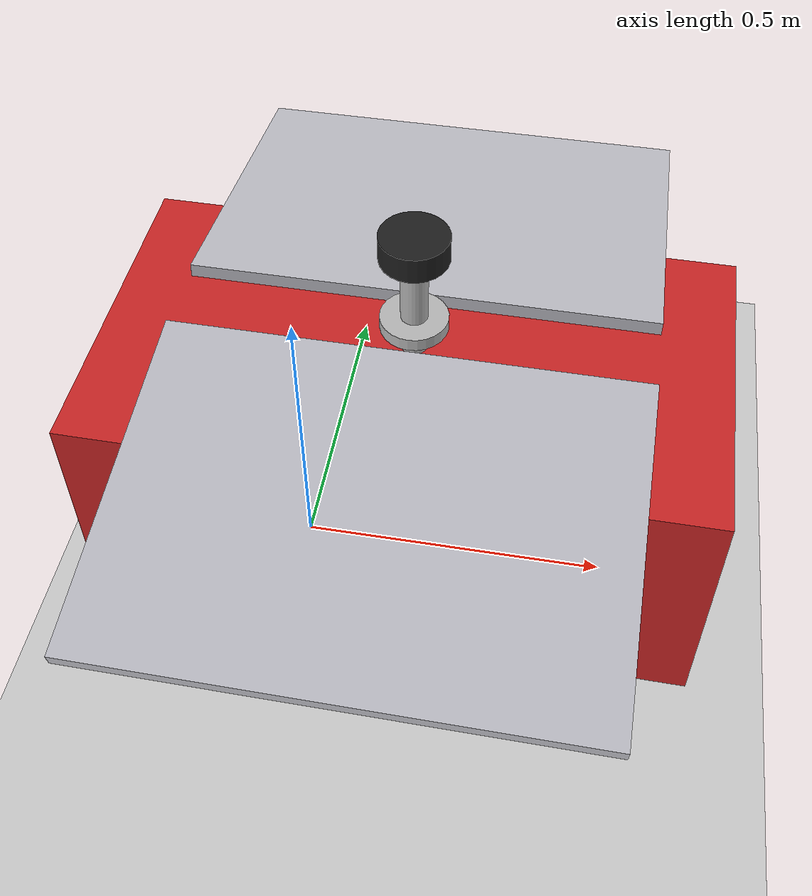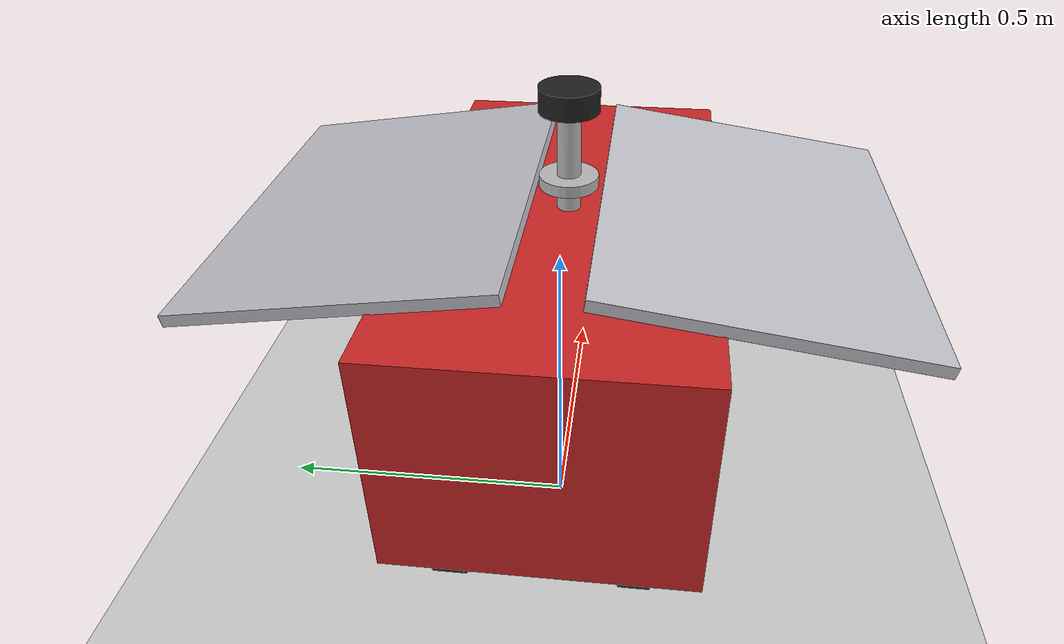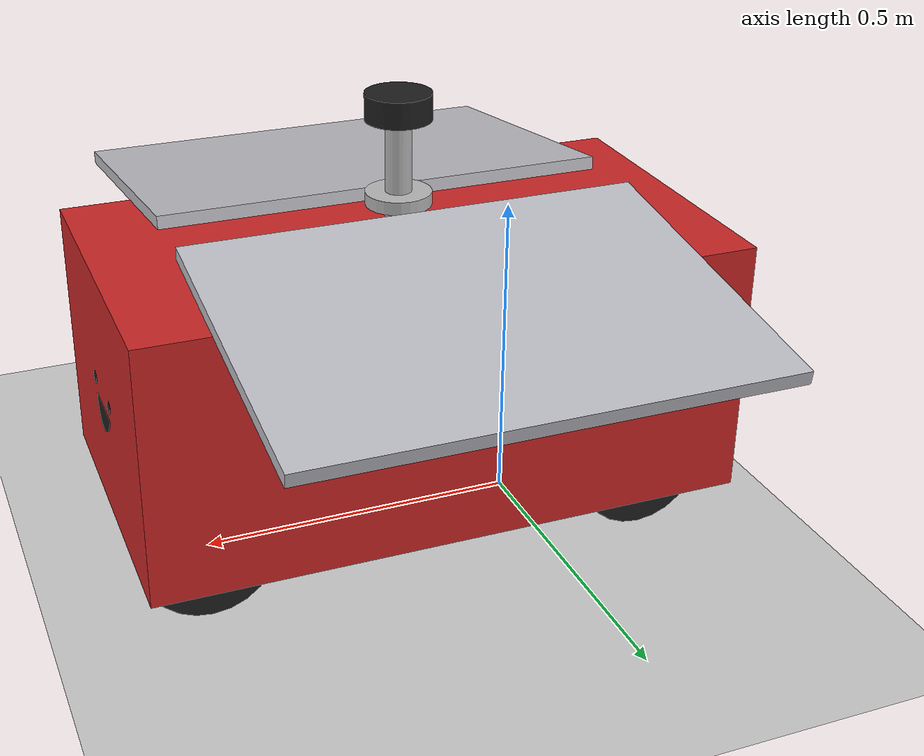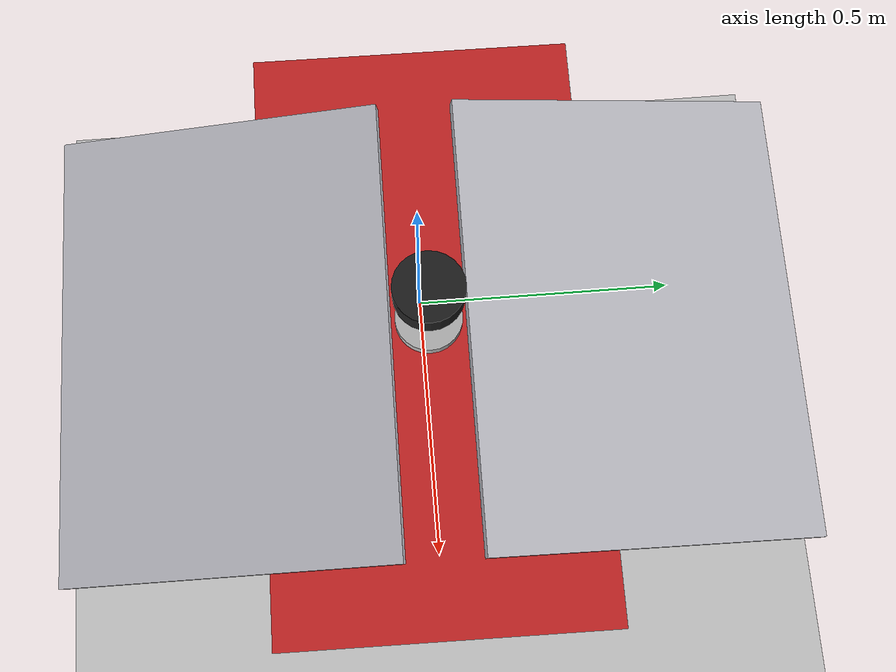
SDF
<sdf version="1.7">
 <world name="default">
  <light name="sun" type="directional">
   <pose>0 0 10 0 -0 0</pose>
   <diffuse>0.8 0.8 0.8 1</diffuse>
   <specular>0.2 0.2 0.2 1</specular>
   <attenuation>
    <range>1000</range>
    <constant>0.9</constant>
    <linear>0.01</linear>
    <quadratic>0.001</quadratic>
   </attenuation>
   <direction>-0.5 0.1 -0.9</direction>
   <spot><inner_angle>0</inner_angle><outer_angle>0</outer_angle><falloff>0</falloff></spot>
  </light>
  <model name="ground_plane">
   <static>1</static>
   <link name="link">
    <collision name="collision">
     <geometry><plane><normal>0 0 1</normal><size>100 100</size></plane></geometry>
     <surface>
      <contact><collide_bitmask>65535</collide_bitmask></contact>
      <friction><ode><mu>100</mu><mu2>50</mu2></ode></friction>
     </surface>
    </collision>
    <visual name="visual">
     <cast_shadows>0</cast_shadows>
     <geometry><plane><normal>0 0 1</normal><size>100 100</size></plane></geometry>
     <material>
      <script><uri>file://media/materials/scripts/gazebo.material</uri><name>Gazebo/Grey</name></script>
     </material>
    </visual>
   </link>
  </model>
  <gravity>0 0 -9.8</gravity>
  <magnetic_field>6e-06 2.3e-05 -4.2e-05</magnetic_field>
  <atmosphere type="adiabatic"/>
  <physics type="ode">
   <max_step_size>0.001</max_step_size>
   <real_time_factor>1</real_time_factor>
   <real_time_update_rate>1000</real_time_update_rate>
  </physics>
  <scene><ambient>0.4 0.4 0.4 1</ambient><background>0.7 0.7 0.7 1</background><shadows>1</shadows></scene>
  <audio><device>default</device></audio>
  <spherical_coordinates>
   <surface_model>EARTH_WGS84</surface_model>
   <latitude_deg>0</latitude_deg>
   <longitude_deg>0</longitude_deg>
   <elevation>0</elevation>
   <heading_deg>0</heading_deg>
  </spherical_coordinates>
  <model name="robot">
   <link name="base_link">
    <inertial>
     <pose>0.098721 -0 0.272209 0 -0 0</pose>
     <mass>4.3</mass>
     <inertia>
      <ixx>0.434138</ixx>
      <ixy>3.64695e-19</ixy>
      <ixz>-0.112695</ixz>
      <iyy>0.385146</iyy>
      <iyz>-4.17973e-18</iyz>
      <izz>0.495219</izz>
     </inertia>
    </inertial>
    <collision name="base_link_fixed_joint_lump__chassis_collision">
     <pose>0.195 0 0.19 0 -0 0</pose>
     <geometry><box><size>0.92 0.505 0.4</size></box></geometry>
    </collision>
    <collision name="base_link_fixed_joint_lump__laser_frame_collision_1">
     <pose>0.195 0 0.58 0 -0 0</pose>
     <geometry><cylinder><length>0.04</length><radius>0.05</radius></cylinder></geometry>
    </collision>
    <collision name="base_link_fixed_joint_lump__solar_mast_collision_2">
     <pose>0.195 0 0.475 0 -0 0</pose>
     <geometry><cylinder><length>0.17</length><radius>0.02</radius></cylinder></geometry>
    </collision>
    <collision name="base_link_fixed_joint_lump__solar_panel_left_collision_3">
     <pose>0.195 0.31 0.39 -0.145 0 0</pose>
     <geometry><box><size>0.7 0.51 0.02</size></box></geometry>
    </collision>
    <collision name="base_link_fixed_joint_lump__solar_panel_right_collision_4">
     <pose>0.195 -0.31 0.39 0.145 -0 0</pose>
     <geometry><box><size>0.7 0.51 0.02</size></box></geometry>
    </collision>
    <collision name="base_link_fixed_joint_lump__rear_left_wheel_collision_5">
     <pose>-0.15 0.1485 0 -1.5708 0 0</pose>
     <geometry><sphere><radius>0.1016</radius></sphere></geometry>
     <surface><friction><ode><mu>0.05</mu><mu2>0.05</mu2></ode></friction></surface>
    </collision>
    <collision name="base_link_fixed_joint_lump__rear_right_wheel_collision_6">
     <pose>-0.15 -0.1485 0 1.5708 -0 0</pose>
     <geometry><sphere><radius>0.1016</radius></sphere></geometry>
     <surface><friction><ode><mu>0.05</mu><mu2>0.05</mu2></ode></friction></surface>
    </collision>
    <visual name="base_link_fixed_joint_lump__chassis_visual">
     <pose>0.195 0 0.19 0 -0 0</pose>
     <geometry><box><size>0.92 0.505 0.4</size></box></geometry>
     <material>
      <script><name>Gazebo/Red</name><uri>file://media/materials/scripts/gazebo.material</uri></script>
     </material>
    </visual>
    <visual name="base_link_fixed_joint_lump__face_link_visual_1">
     <pose>0.655 0.05 0.2 3.14159 1.57079 3.14159</pose>
     <geometry><cylinder><length>0.002</length><radius>0.01</radius></cylinder></geometry>
     <material>
      <script><name>Gazebo/Black</name><uri>file://media/materials/scripts/gazebo.material</uri></script>
     </material>
    </visual>
    <visual name="base_link_fixed_joint_lump__face_link_visual_2">
     <pose>0.655 -0.05 0.2 3.14159 1.57079 3.14159</pose>
     <geometry><cylinder><length>0.002</length><radius>0.01</radius></cylinder></geometry>
     <material>
      <script><name>Gazebo/Black</name><uri>file://media/materials/scripts/gazebo.material</uri></script>
     </material>
    </visual>
    <visual name="base_link_fixed_joint_lump__face_link_visual_3">
     <pose>0.644 0 0.19 0 1.5 0</pose>
     <geometry><cylinder><length>0.02</length><radius>0.05</radius></cylinder></geometry>
     <material>
      <script><name>Gazebo/Black</name><uri>file://media/materials/scripts/gazebo.material</uri></script>
     </material>
    </visual>
    <visual name="base_link_fixed_joint_lump__laser_frame_visual_4">
     <pose>0.195 0 0.58 0 -0 0</pose>
     <geometry><cylinder><length>0.04</length><radius>0.05</radius></cylinder></geometry>
     <material>
      <script><name>Gazebo/Black</name><uri>file://media/materials/scripts/gazebo.material</uri></script>
     </material>
    </visual>
    <visual name="base_link_fixed_joint_lump__laser_frame_visual_5">
     <pose>0.195 0 0.53 0 -0 0</pose>
     <geometry><cylinder><length>0.1</length><radius>0.01</radius></cylinder></geometry>
     <material>
      <script><name>Gazebo/Black</name><uri>file://media/materials/scripts/gazebo.material</uri></script>
     </material>
    </visual>
    <visual name="base_link_fixed_joint_lump__solar_mast_visual_6">
     <pose>0.195 0 0.475 0 -0 0</pose>
     <geometry><cylinder><length>0.17</length><radius>0.02</radius></cylinder></geometry>
    </visual>
    <visual name="base_link_fixed_joint_lump__camera_link_visual_7">
     <pose>0.195 0 0.525 0 -0 0</pose>
     <geometry><box><size>0.01 0.03 0.03</size></box></geometry>
     <material>
      <script><name>Gazebo/Black</name><uri>file://media/materials/scripts/gazebo.material</uri></script>
     </material>
    </visual>
    <visual name="base_link_fixed_joint_lump__camera_link_visual_8">
     <pose>0.195 0 0.475 0 -0 0</pose>
     <geometry><cylinder><length>0.1</length><radius>0.002</radius></cylinder></geometry>
     <material>
      <script><name>Gazebo/Black</name><uri>file://media/materials/scripts/gazebo.material</uri></script>
     </material>
    </visual>
    <visual name="base_link_fixed_joint_lump__solar_hub_visual_9">
     <pose>0.195 0 0.44 0 -0 0</pose>
     <geometry><cylinder><length>0.02</length><radius>0.05</radius></cylinder></geometry>
    </visual>
    <visual name="base_link_fixed_joint_lump__solar_panel_left_visual_10">
     <pose>0.195 0.31 0.39 -0.145 0 0</pose>
     <geometry><box><size>0.7 0.51 0.02</size></box></geometry>
     <material>
      <script><name>Gazebo/Silver</name><uri>file://media/materials/scripts/gazebo.material</uri></script>
     </material>
    </visual>
    <visual name="base_link_fixed_joint_lump__solar_panel_right_visual_11">
     <pose>0.195 -0.31 0.39 0.145 -0 0</pose>
     <geometry><box><size>0.7 0.51 0.02</size></box></geometry>
     <material>
      <script><name>Gazebo/Silver</name><uri>file://media/materials/scripts/gazebo.material</uri></script>
     </material>
    </visual>
    <visual name="base_link_fixed_joint_lump__rear_left_wheel_visual_12">
     <pose>-0.15 0.1485 0 -1.5708 0 0</pose>
     <geometry><cylinder><length>0.0508</length><radius>0.1016</radius></cylinder></geometry>
     <material>
      <script><name>Gazebo/Black</name><uri>file://media/materials/scripts/gazebo.material</uri></script>
     </material>
    </visual>
    <visual name="base_link_fixed_joint_lump__rear_right_wheel_visual_13">
     <pose>-0.15 -0.1485 0 1.5708 -0 0</pose>
     <geometry><cylinder><length>0.0508</length><radius>0.1016</radius></cylinder></geometry>
     <material>
      <script><name>Gazebo/Black</name><uri>file://media/materials/scripts/gazebo.material</uri></script>
     </material>
    </visual>
    <sensor name="laser" type="ray">
     <visualize>0</visualize>
     <update_rate>10</update_rate>
     <ray>
      <scan>
       <horizontal>
        <samples>360</samples>
        <min_angle>-3.14</min_angle>
        <max_angle>3.14</max_angle>
        <resolution>1</resolution>
       </horizontal>
       <vertical><samples>1</samples><min_angle>0</min_angle><max_angle>0</max_angle></vertical>
      </scan>
      <range><min>0.3</min><max>12</max></range>
     </ray>
     <plugin name="laser_controller" filename="libgazebo_ros_ray_sensor.so">
      <ros><argument>~/out:=scan</argument></ros>
      <output_type>sensor_msgs/LaserScan</output_type>
      <frame_name>laser_frame</frame_name>
     </plugin>
     <pose>0.195 0 0.58 0 -0 0</pose>
    </sensor>
    <sensor name="camera" type="camera">
     <visualize>1</visualize>
     <update_rate>10</update_rate>
     <camera>
      <horizontal_fov>1.089</horizontal_fov>
      <image><format>R8G8B8</format><width>640</width><height>480</height></image>
      <clip><near>0.05</near><far>8</far></clip>
     </camera>
     <plugin name="camera_controller" filename="libgazebo_ros_camera.so">
      <frame_name>camera_link_optical</frame_name>
     </plugin>
     <pose>0.195 0 0.525 0 -0 0</pose>
    </sensor>
    <slip1>0.8</slip1>
    <slip2>0.8</slip2>
    <slip1>0.8</slip1>
    <slip2>0.8</slip2>
   </link>
   <joint name="left_wheel_joint" type="revolute">
    <pose relative_to="base_link">0.55 0.1485 0 -1.5708 0 0</pose>
    <parent>base_link</parent>
    <child>left_wheel</child>
    <axis>
     <xyz>0 0 1</xyz>
     <limit><lower>-1e+16</lower><upper>1e+16</upper></limit>
     <dynamics><spring_reference>0</spring_reference><spring_stiffness>0</spring_stiffness></dynamics>
    </axis>
   </joint>
   <link name="left_wheel">
    <pose relative_to="left_wheel_joint">0 0 0 0 -0 0</pose>
    <inertial>
     <mass>0.6</mass>
     <inertia>
      <ixx>0.00167742</ixx>
      <ixy>0</ixy>
      <ixz>0</ixz>
      <iyy>0.00167742</iyy>
      <iyz>0</iyz>
      <izz>0.00309677</izz>
     </inertia>
    </inertial>
    <collision name="left_wheel_collision">
     <geometry><sphere><radius>0.1016</radius></sphere></geometry>
    </collision>
    <visual name="left_wheel_visual">
     <geometry><cylinder><length>0.0508</length><radius>0.1016</radius></cylinder></geometry>
     <material>
      <script><name>Gazebo/Black</name><uri>file://media/materials/scripts/gazebo.material</uri></script>
     </material>
    </visual>
   </link>
   <joint name="right_wheel_joint" type="revolute">
    <pose relative_to="base_link">0.55 -0.1485 0 1.5708 -0 0</pose>
    <parent>base_link</parent>
    <child>right_wheel</child>
    <axis>
     <xyz>0 0 -1</xyz>
     <limit><lower>-1e+16</lower><upper>1e+16</upper></limit>
     <dynamics><spring_reference>0</spring_reference><spring_stiffness>0</spring_stiffness></dynamics>
    </axis>
   </joint>
   <link name="right_wheel">
    <pose relative_to="right_wheel_joint">0 0 0 0 -0 0</pose>
    <inertial>
     <mass>0.6</mass>
     <inertia>
      <ixx>0.00167742</ixx>
      <ixy>0</ixy>
      <ixz>0</ixz>
      <iyy>0.00167742</iyy>
      <iyz>0</iyz>
      <izz>0.00309677</izz>
     </inertia>
    </inertial>
    <collision name="right_wheel_collision">
     <geometry><sphere><radius>0.1016</radius></sphere></geometry>
    </collision>
    <visual name="right_wheel_visual">
     <geometry><cylinder><length>0.0508</length><radius>0.1016</radius></cylinder></geometry>
     <material>
      <script><name>Gazebo/Black</name><uri>file://media/materials/scripts/gazebo.material</uri></script>
     </material>
    </visual>
   </link>
   <static>0</static>
   <plugin name="gazebo_ros2_control" filename="libgazebo_ros2_control.so">
    <parameters>/home/edward/base_ws/install/bantala_base/share/bantala_base/config/my_controllers.yaml</parameters>
    <parameters>/home/edward/base_ws/install/bantala_base/share/bantala_base/config/gaz_ros2_ctl_use_sim.yaml</parameters>
   </plugin>
   <pose>-0.012647 0.005719 0.1016 3e-06 0 -0.008507</pose>
  </model>
 </world>
</sdf>
